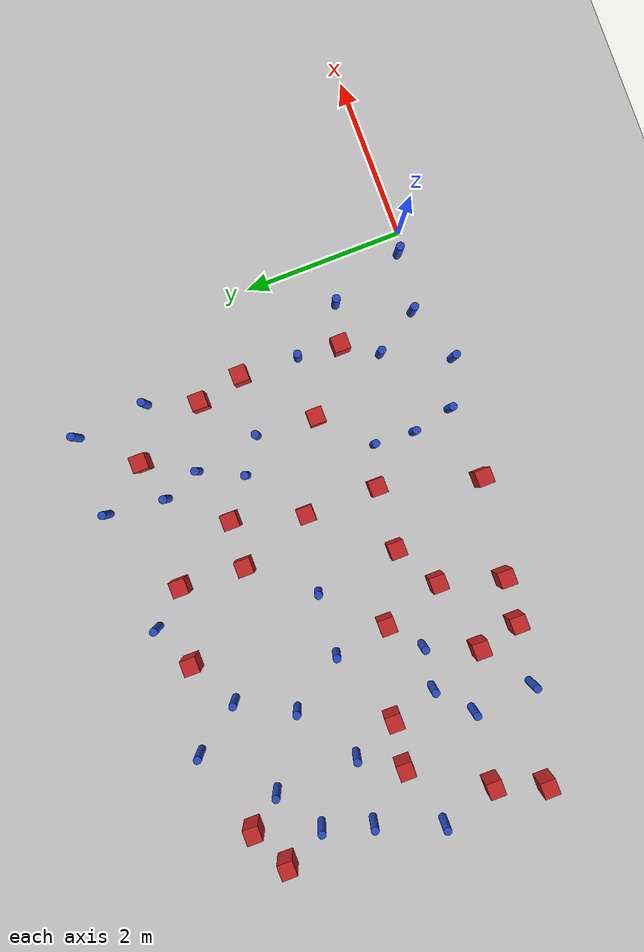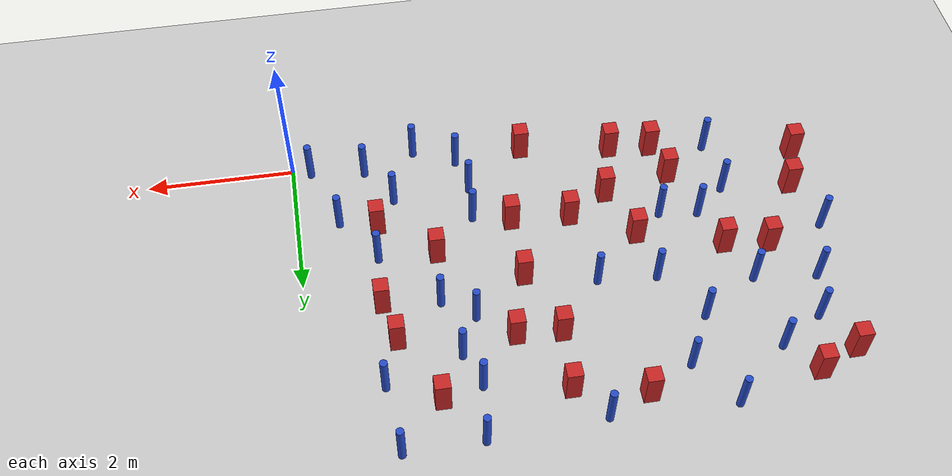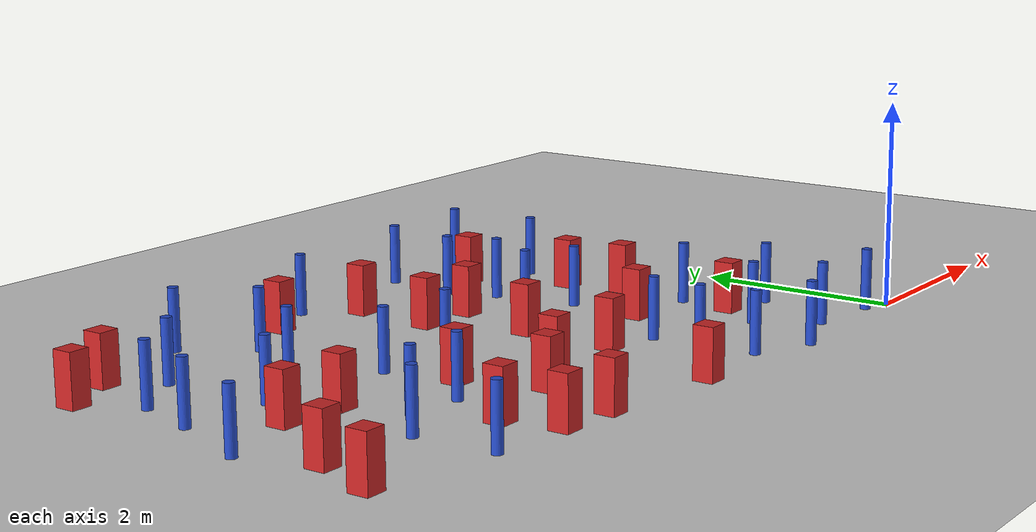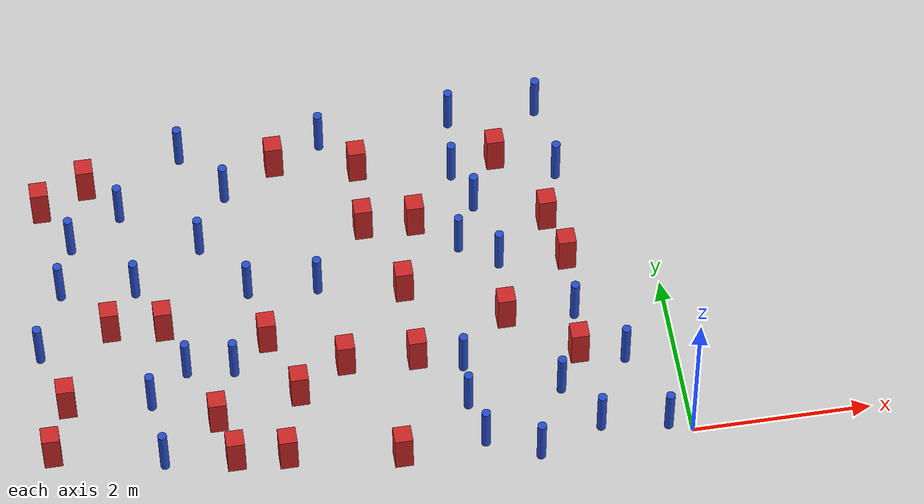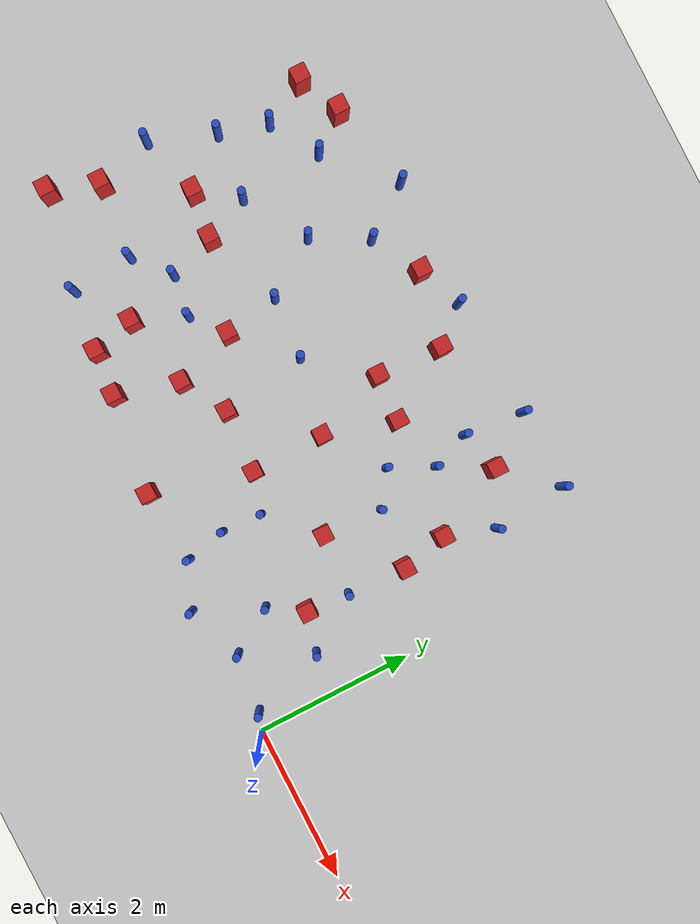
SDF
<sdf version="1.6">
 <world name="default">
  <model name="ground_plane">
   <static>1</static>
   <link name="link">
    <collision name="collision">
     <geometry><plane><normal>0 0 1</normal><size>100 100</size></plane></geometry>
     <surface><friction><ode><mu>100</mu><mu2>50</mu2></ode></friction></surface>
    </collision>
    <visual name="visual">
     <cast_shadows>0</cast_shadows>
     <geometry><plane><normal>0 0 1</normal><size>100 100</size></plane></geometry>
     <material>
      <ambient>1.0 1.0 1.0 1.0</ambient>
      <diffuse>0.8 0.8 0.8 1.0</diffuse>
      <specular>0.01 0.01 0.01 1.000000</specular>
     </material>
    </visual>
   </link>
  </model>
  <model name="pole_obstacle1">
   <static>true</static>
   <pose>-0.901617990239 3.67017002078 -3.09024884848e-07 -7.19054271902e-07 -2.11315075191e-07 -1.9393550928e-07</pose>
   <link name="link">
    <pose>0 0 0.3 0 -0 0</pose>
    <inertial>
     <mass>1</mass>
     <inertia><ixx>0.145833</ixx><ixy>0</ixy><ixz>0</ixz><iyy>0.145833</iyy><iyz>0</iyz><izz>0.125</izz></inertia>
    </inertial>
    <collision name="collision">
     <geometry><cylinder><radius>0.05</radius><length>.6</length></cylinder></geometry>
    </collision>
    <visual name="visual">
     <geometry><cylinder><radius>0.05</radius><length>.6</length></cylinder></geometry>
     <material>
      <script><name>Gazebo/Blue</name><uri>file://media/materials/scripts/gazebo.material</uri></script>
     </material>
    </visual>
   </link>
  </model>
  <model name="pole_obstacle2">
   <static>true</static>
   <pose>-3.81581999024 2.50415002078 -3.09024884793e-07 -7.19054271912e-07 -2.11315075128e-07 -1.93935509262e-07</pose>
   <link name="link">
    <pose>0 0 0.3 0 -0 0</pose>
    <inertial>
     <mass>1</mass>
     <inertia><ixx>0.145833</ixx><ixy>0</ixy><ixz>0</ixz><iyy>0.145833</iyy><iyz>0</iyz><izz>0.125</izz></inertia>
    </inertial>
    <collision name="collision">
     <geometry><cylinder><radius>0.05</radius><length>.6</length></cylinder></geometry>
    </collision>
    <visual name="visual">
     <geometry><cylinder><radius>0.05</radius><length>.6</length></cylinder></geometry>
     <material>
      <script><name>Gazebo/Blue</name><uri>file://media/materials/scripts/gazebo.material</uri></script>
     </material>
    </visual>
   </link>
  </model>
  <model name="square_post_obstacle7">
   <static>true</static>
   <pose>-2.8676599448 2.30549997467 -4.36207812815e-07 3.75137919937e-06 9.77721102514e-07 2.47381364184e-05</pose>
   <link name="link">
    <pose>0 0 0.25 0 -0 0</pose>
    <inertial>
     <mass>100</mass>
     <inertia>
      <ixx>0.166667</ixx>
      <ixy>0</ixy>
      <ixz>0</ixz>
      <iyy>0.166667</iyy>
      <iyz>0</iyz>
      <izz>0.166667</izz>
     </inertia>
    </inertial>
    <collision name="collision"><geometry><box><size>.2 .2 .5</size></box></geometry></collision>
    <visual name="visual">
     <geometry><box><size>.2 .2 .5</size></box></geometry>
     <material>
      <script><name>Gazebo/Red</name><uri>file://media/materials/scripts/gazebo.material</uri></script>
     </material>
    </visual>
   </link>
  </model>
  <model name="square_post_obstacle17">
   <static>true</static>
   <pose>-4.4447999448 0.308830974674 -4.36207812815e-07 3.75137919937e-06 9.77721102514e-07 2.47381364184e-05</pose>
   <link name="link">
    <pose>0 0 0.25 0 -0 0</pose>
    <inertial>
     <mass>100</mass>
     <inertia>
      <ixx>0.166667</ixx>
      <ixy>0</ixy>
      <ixz>0</ixz>
      <iyy>0.166667</iyy>
      <iyz>0</iyz>
      <izz>0.166667</izz>
     </inertia>
    </inertial>
    <collision name="collision"><geometry><box><size>.2 .2 .5</size></box></geometry></collision>
    <visual name="visual">
     <geometry><box><size>.2 .2 .5</size></box></geometry>
     <material>
      <script><name>Gazebo/Red</name><uri>file://media/materials/scripts/gazebo.material</uri></script>
     </material>
    </visual>
   </link>
  </model>
  <model name="pole_obstacle27">
   <static>true</static>
   <pose>-5.06459999024 3.25341002078 -3.09024884793e-07 -7.19054271912e-07 -2.11315075135e-07 -1.93935509265e-07</pose>
   <link name="link">
    <pose>0 0 0.3 0 -0 0</pose>
    <inertial>
     <mass>1</mass>
     <inertia><ixx>0.145833</ixx><ixy>0</ixy><ixz>0</ixz><iyy>0.145833</iyy><iyz>0</iyz><izz>0.125</izz></inertia>
    </inertial>
    <collision name="collision">
     <geometry><cylinder><radius>0.05</radius><length>.6</length></cylinder></geometry>
    </collision>
    <visual name="visual">
     <geometry><cylinder><radius>0.05</radius><length>.6</length></cylinder></geometry>
     <material>
      <script><name>Gazebo/Blue</name><uri>file://media/materials/scripts/gazebo.material</uri></script>
     </material>
    </visual>
   </link>
  </model>
  <model name="pole_obstacle39">
   <static>true</static>
   <pose>-4.60001999024 2.56454002078 -3.09024884793e-07 -7.19054271912e-07 -2.11315075144e-07 -1.93935509269e-07</pose>
   <link name="link">
    <pose>0 0 0.3 0 -0 0</pose>
    <inertial>
     <mass>1</mass>
     <inertia><ixx>0.145833</ixx><ixy>0</ixy><ixz>0</ixz><iyy>0.145833</iyy><iyz>0</iyz><izz>0.125</izz></inertia>
    </inertial>
    <collision name="collision">
     <geometry><cylinder><radius>0.05</radius><length>.6</length></cylinder></geometry>
    </collision>
    <visual name="visual">
     <geometry><cylinder><radius>0.05</radius><length>.6</length></cylinder></geometry>
     <material>
      <script><name>Gazebo/Blue</name><uri>file://media/materials/scripts/gazebo.material</uri></script>
     </material>
    </visual>
   </link>
  </model>
  <model name="square_post_obstacle32">
   <static>true</static>
   <pose>-3.2030099448 0.129323974674 -4.36207812815e-07 3.75137919937e-06 9.77721102514e-07 2.47381364184e-05</pose>
   <link name="link">
    <pose>0 0 0.25 0 -0 0</pose>
    <inertial>
     <mass>100</mass>
     <inertia>
      <ixx>0.166667</ixx>
      <ixy>0</ixy>
      <ixz>0</ixz>
      <iyy>0.166667</iyy>
      <iyz>0</iyz>
      <izz>0.166667</izz>
     </inertia>
    </inertial>
    <collision name="collision"><geometry><box><size>.2 .2 .5</size></box></geometry></collision>
    <visual name="visual">
     <geometry><box><size>.2 .2 .5</size></box></geometry>
     <material>
      <script><name>Gazebo/Red</name><uri>file://media/materials/scripts/gazebo.material</uri></script>
     </material>
    </visual>
   </link>
  </model>
  <model name="pole_obstacle48">
   <static>true</static>
   <pose>-5.78747999024 0.452747020783 -3.09024884793e-07 -7.19054271912e-07 -2.11315075125e-07 -1.93935509261e-07</pose>
   <link name="link">
    <pose>0 0 0.3 0 -0 0</pose>
    <inertial>
     <mass>1</mass>
     <inertia><ixx>0.145833</ixx><ixy>0</ixy><ixz>0</ixz><iyy>0.145833</iyy><iyz>0</iyz><izz>0.125</izz></inertia>
    </inertial>
    <collision name="collision">
     <geometry><cylinder><radius>0.05</radius><length>.6</length></cylinder></geometry>
    </collision>
    <visual name="visual">
     <geometry><cylinder><radius>0.05</radius><length>.6</length></cylinder></geometry>
     <material>
      <script><name>Gazebo/Blue</name><uri>file://media/materials/scripts/gazebo.material</uri></script>
     </material>
    </visual>
   </link>
  </model>
  <model name="square_post_obstacle39">
   <static>true</static>
   <pose>-2.8589399448 1.37437997467 -4.36207812815e-07 3.75137919937e-06 9.77721102514e-07 2.47381364184e-05</pose>
   <link name="link">
    <pose>0 0 0.25 0 -0 0</pose>
    <inertial>
     <mass>100</mass>
     <inertia>
      <ixx>0.166667</ixx>
      <ixy>0</ixy>
      <ixz>0</ixz>
      <iyy>0.166667</iyy>
      <iyz>0</iyz>
      <izz>0.166667</izz>
     </inertia>
    </inertial>
    <collision name="collision"><geometry><box><size>.2 .2 .5</size></box></geometry></collision>
    <visual name="visual">
     <geometry><box><size>.2 .2 .5</size></box></geometry>
     <material>
      <script><name>Gazebo/Red</name><uri>file://media/materials/scripts/gazebo.material</uri></script>
     </material>
    </visual>
   </link>
  </model>
  <model name="pole_obstacle51">
   <static>true</static>
   <pose>-5.40598999024 1.60795002078 -3.09024884793e-07 -7.19054271912e-07 -2.11315075123e-07 -1.93935509261e-07</pose>
   <link name="link">
    <pose>0 0 0.3 0 -0 0</pose>
    <inertial>
     <mass>1</mass>
     <inertia><ixx>0.145833</ixx><ixy>0</ixy><ixz>0</ixz><iyy>0.145833</iyy><iyz>0</iyz><izz>0.125</izz></inertia>
    </inertial>
    <collision name="collision">
     <geometry><cylinder><radius>0.05</radius><length>.6</length></cylinder></geometry>
    </collision>
    <visual name="visual">
     <geometry><cylinder><radius>0.05</radius><length>.6</length></cylinder></geometry>
     <material>
      <script><name>Gazebo/Blue</name><uri>file://media/materials/scripts/gazebo.material</uri></script>
     </material>
    </visual>
   </link>
  </model>
  <model name="pole_obstacle70">
   <static>true</static>
   <pose>-6.99186999024 2.05843002078 -3.09024884793e-07 -7.19054271912e-07 -2.11315075135e-07 -1.93935509265e-07</pose>
   <link name="link">
    <pose>0 0 0.3 0 -0 0</pose>
    <inertial>
     <mass>1</mass>
     <inertia><ixx>0.145833</ixx><ixy>0</ixy><ixz>0</ixz><iyy>0.145833</iyy><iyz>0</iyz><izz>0.125</izz></inertia>
    </inertial>
    <collision name="collision">
     <geometry><cylinder><radius>0.05</radius><length>.6</length></cylinder></geometry>
    </collision>
    <visual name="visual">
     <geometry><cylinder><radius>0.05</radius><length>.6</length></cylinder></geometry>
     <material>
      <script><name>Gazebo/Blue</name><uri>file://media/materials/scripts/gazebo.material</uri></script>
     </material>
    </visual>
   </link>
  </model>
  <model name="pole_obstacle71">
   <static>true</static>
   <pose>-2.27416999024 0.195112020783 -3.09024884793e-07 -7.19054271913e-07 -2.11315075118e-07 -1.93935509258e-07</pose>
   <link name="link">
    <pose>0 0 0.3 0 -0 0</pose>
    <inertial>
     <mass>1</mass>
     <inertia><ixx>0.145833</ixx><ixy>0</ixy><ixz>0</ixz><iyy>0.145833</iyy><iyz>0</iyz><izz>0.125</izz></inertia>
    </inertial>
    <collision name="collision">
     <geometry><cylinder><radius>0.05</radius><length>.6</length></cylinder></geometry>
    </collision>
    <visual name="visual">
     <geometry><cylinder><radius>0.05</radius><length>.6</length></cylinder></geometry>
     <material>
      <script><name>Gazebo/Blue</name><uri>file://media/materials/scripts/gazebo.material</uri></script>
     </material>
    </visual>
   </link>
  </model>
  <model name="pole_obstacle75">
   <static>true</static>
   <pose>-0.989028990239 4.60326002078 -3.09024884793e-07 -7.19054271911e-07 -2.11315075144e-07 -1.9393550927e-07</pose>
   <link name="link">
    <pose>0 0 0.3 0 -0 0</pose>
    <inertial>
     <mass>1</mass>
     <inertia><ixx>0.145833</ixx><ixy>0</ixy><ixz>0</ixz><iyy>0.145833</iyy><iyz>0</iyz><izz>0.125</izz></inertia>
    </inertial>
    <collision name="collision">
     <geometry><cylinder><radius>0.05</radius><length>.6</length></cylinder></geometry>
    </collision>
    <visual name="visual">
     <geometry><cylinder><radius>0.05</radius><length>.6</length></cylinder></geometry>
     <material>
      <script><name>Gazebo/Blue</name><uri>file://media/materials/scripts/gazebo.material</uri></script>
     </material>
    </visual>
   </link>
  </model>
  <model name="pole_obstacle78">
   <static>true</static>
   <pose>-1.33695999024 0.751950020783 -3.09024884793e-07 -7.19054271912e-07 -2.11315075127e-07 -1.93935509261e-07</pose>
   <link name="link">
    <pose>0 0 0.3 0 -0 0</pose>
    <inertial>
     <mass>1</mass>
     <inertia><ixx>0.145833</ixx><ixy>0</ixy><ixz>0</ixz><iyy>0.145833</iyy><iyz>0</iyz><izz>0.125</izz></inertia>
    </inertial>
    <collision name="collision">
     <geometry><cylinder><radius>0.05</radius><length>.6</length></cylinder></geometry>
    </collision>
    <visual name="visual">
     <geometry><cylinder><radius>0.05</radius><length>.6</length></cylinder></geometry>
     <material>
      <script><name>Gazebo/Blue</name><uri>file://media/materials/scripts/gazebo.material</uri></script>
     </material>
    </visual>
   </link>
  </model>
  <model name="pole_obstacle79">
   <static>true</static>
   <pose>-2.36067999024 1.21716002078 -3.09024884793e-07 -7.19054271911e-07 -2.11315075168e-07 -1.93935509283e-07</pose>
   <link name="link">
    <pose>0 0 0.3 0 -0 0</pose>
    <inertial>
     <mass>1</mass>
     <inertia><ixx>0.145833</ixx><ixy>0</ixy><ixz>0</ixz><iyy>0.145833</iyy><iyz>0</iyz><izz>0.125</izz></inertia>
    </inertial>
    <collision name="collision">
     <geometry><cylinder><radius>0.05</radius><length>.6</length></cylinder></geometry>
    </collision>
    <visual name="visual">
     <geometry><cylinder><radius>0.05</radius><length>.6</length></cylinder></geometry>
     <material>
      <script><name>Gazebo/Blue</name><uri>file://media/materials/scripts/gazebo.material</uri></script>
     </material>
    </visual>
   </link>
  </model>
  <model name="square_post_obstacle67">
   <static>true</static>
   <pose>-6.7870099448 4.03285997467 -4.36207812815e-07 3.75137919937e-06 9.77721102514e-07 2.47381364184e-05</pose>
   <link name="link">
    <pose>0 0 0.25 0 -0 0</pose>
    <inertial>
     <mass>100</mass>
     <inertia>
      <ixx>0.166667</ixx>
      <ixy>0</ixy>
      <ixz>0</ixz>
      <iyy>0.166667</iyy>
      <iyz>0</iyz>
      <izz>0.166667</izz>
     </inertia>
    </inertial>
    <collision name="collision"><geometry><box><size>.2 .2 .5</size></box></geometry></collision>
    <visual name="visual">
     <geometry><box><size>.2 .2 .5</size></box></geometry>
     <material>
      <script><name>Gazebo/Red</name><uri>file://media/materials/scripts/gazebo.material</uri></script>
     </material>
    </visual>
   </link>
  </model>
  <model name="square_post_obstacle69">
   <static>true</static>
   <pose>-5.1441699448 0.900576974674 -4.36207812815e-07 3.75137919937e-06 9.77721102514e-07 2.47381364184e-05</pose>
   <link name="link">
    <pose>0 0 0.25 0 -0 0</pose>
    <inertial>
     <mass>100</mass>
     <inertia>
      <ixx>0.166667</ixx>
      <ixy>0</ixy>
      <ixz>0</ixz>
      <iyy>0.166667</iyy>
      <iyz>0</iyz>
      <izz>0.166667</izz>
     </inertia>
    </inertial>
    <collision name="collision"><geometry><box><size>.2 .2 .5</size></box></geometry></collision>
    <visual name="visual">
     <geometry><box><size>.2 .2 .5</size></box></geometry>
     <material>
      <script><name>Gazebo/Red</name><uri>file://media/materials/scripts/gazebo.material</uri></script>
     </material>
    </visual>
   </link>
  </model>
  <model name="pole_obstacle82">
   <static>true</static>
   <pose>-0.988530990239 0.198704020783 -3.09024884793e-07 -7.19054271912e-07 -2.11315075131e-07 -1.93935509263e-07</pose>
   <link name="link">
    <pose>0 0 0.3 0 -0 0</pose>
    <inertial>
     <mass>1</mass>
     <inertia><ixx>0.145833</ixx><ixy>0</ixy><ixz>0</ixz><iyy>0.145833</iyy><iyz>0</iyz><izz>0.125</izz></inertia>
    </inertial>
    <collision name="collision">
     <geometry><cylinder><radius>0.05</radius><length>.6</length></cylinder></geometry>
    </collision>
    <visual name="visual">
     <geometry><cylinder><radius>0.05</radius><length>.6</length></cylinder></geometry>
     <material>
      <script><name>Gazebo/Blue</name><uri>file://media/materials/scripts/gazebo.material</uri></script>
     </material>
    </visual>
   </link>
  </model>
  <model name="pole_obstacle84">
   <static>true</static>
   <pose>-5.14254999024 4.55343002078 -3.09024884793e-07 -7.19054271911e-07 -2.1131507516e-07 -1.93935509277e-07</pose>
   <link name="link">
    <pose>0 0 0.3 0 -0 0</pose>
    <inertial>
     <mass>1</mass>
     <inertia><ixx>0.145833</ixx><ixy>0</ixy><ixz>0</ixz><iyy>0.145833</iyy><iyz>0</iyz><izz>0.125</izz></inertia>
    </inertial>
    <collision name="collision">
     <geometry><cylinder><radius>0.05</radius><length>.6</length></cylinder></geometry>
    </collision>
    <visual name="visual">
     <geometry><cylinder><radius>0.05</radius><length>.6</length></cylinder></geometry>
     <material>
      <script><name>Gazebo/Blue</name><uri>file://media/materials/scripts/gazebo.material</uri></script>
     </material>
    </visual>
   </link>
  </model>
  <model name="square_post_obstacle78">
   <static>true</static>
   <pose>-0.992780944804 2.45842997467 -4.36207812815e-07 3.75137919937e-06 9.77721102514e-07 2.47381364184e-05</pose>
   <link name="link">
    <pose>0 0 0.25 0 -0 0</pose>
    <inertial>
     <mass>100</mass>
     <inertia>
      <ixx>0.166667</ixx>
      <ixy>0</ixy>
      <ixz>0</ixz>
      <iyy>0.166667</iyy>
      <iyz>0</iyz>
      <izz>0.166667</izz>
     </inertia>
    </inertial>
    <collision name="collision"><geometry><box><size>.2 .2 .5</size></box></geometry></collision>
    <visual name="visual">
     <geometry><box><size>.2 .2 .5</size></box></geometry>
     <material>
      <script><name>Gazebo/Red</name><uri>file://media/materials/scripts/gazebo.material</uri></script>
     </material>
    </visual>
   </link>
  </model>
  <model name="pole_obstacle90">
   <static>true</static>
   <pose>-1.74453999024 2.53128002078 -3.09024884848e-07 -7.19054271902e-07 -2.11315075192e-07 -1.93935509282e-07</pose>
   <link name="link">
    <pose>0 0 0.3 0 -0 0</pose>
    <inertial>
     <mass>1</mass>
     <inertia><ixx>0.145833</ixx><ixy>0</ixy><ixz>0</ixz><iyy>0.145833</iyy><iyz>0</iyz><izz>0.125</izz></inertia>
    </inertial>
    <collision name="collision">
     <geometry><cylinder><radius>0.05</radius><length>.6</length></cylinder></geometry>
    </collision>
    <visual name="visual">
     <geometry><cylinder><radius>0.05</radius><length>.6</length></cylinder></geometry>
     <material>
      <script><name>Gazebo/Blue</name><uri>file://media/materials/scripts/gazebo.material</uri></script>
     </material>
    </visual>
   </link>
  </model>
  <model name="square_post_obstacle83">
   <static>true</static>
   <pose>-4.0828099448 4.26227997467 -4.36207812815e-07 3.75137919937e-06 9.77721102514e-07 2.47381364184e-05</pose>
   <link name="link">
    <pose>0 0 0.25 0 -0 0</pose>
    <inertial>
     <mass>100</mass>
     <inertia>
      <ixx>0.166667</ixx>
      <ixy>0</ixy>
      <ixz>0</ixz>
      <iyy>0.166667</iyy>
      <iyz>0</iyz>
      <izz>0.166667</izz>
     </inertia>
    </inertial>
    <collision name="collision"><geometry><box><size>.2 .2 .5</size></box></geometry></collision>
    <visual name="visual">
     <geometry><box><size>.2 .2 .5</size></box></geometry>
     <material>
      <script><name>Gazebo/Red</name><uri>file://media/materials/scripts/gazebo.material</uri></script>
     </material>
    </visual>
   </link>
  </model>
  <model name="pole_obstacle94">
   <static>true</static>
   <pose>-2.08466999024 3.83935002078 -3.09024884848e-07 -7.19054271903e-07 -2.11315075185e-07 -1.93935509279e-07</pose>
   <link name="link">
    <pose>0 0 0.3 0 -0 0</pose>
    <inertial>
     <mass>1</mass>
     <inertia><ixx>0.145833</ixx><ixy>0</ixy><ixz>0</ixz><iyy>0.145833</iyy><iyz>0</iyz><izz>0.125</izz></inertia>
    </inertial>
    <collision name="collision">
     <geometry><cylinder><radius>0.05</radius><length>.6</length></cylinder></geometry>
    </collision>
    <visual name="visual">
     <geometry><cylinder><radius>0.05</radius><length>.6</length></cylinder></geometry>
     <material>
      <script><name>Gazebo/Blue</name><uri>file://media/materials/scripts/gazebo.material</uri></script>
     </material>
    </visual>
   </link>
  </model>
  <model name="pole_obstacle98">
   <static>true</static>
   <pose>-2.38574999024 0.707127020783 -3.09024884793e-07 -7.19054271912e-07 -2.11315075126e-07 -1.93935509262e-07</pose>
   <link name="link">
    <pose>0 0 0.3 0 -0 0</pose>
    <inertial>
     <mass>1</mass>
     <inertia><ixx>0.145833</ixx><ixy>0</ixy><ixz>0</ixz><iyy>0.145833</iyy><iyz>0</iyz><izz>0.125</izz></inertia>
    </inertial>
    <collision name="collision">
     <geometry><cylinder><radius>0.05</radius><length>.6</length></cylinder></geometry>
    </collision>
    <visual name="visual">
     <geometry><cylinder><radius>0.05</radius><length>.6</length></cylinder></geometry>
     <material>
      <script><name>Gazebo/Blue</name><uri>file://media/materials/scripts/gazebo.material</uri></script>
     </material>
    </visual>
   </link>
  </model>
  <model name="pole_obstacle99">
   <static>true</static>
   <pose>-3.52632999024 4.50293002078 -3.09024884848e-07 -7.19054271903e-07 -2.11315075193e-07 -1.93935509285e-07</pose>
   <link name="link">
    <pose>0 0 0.3 0 -0 0</pose>
    <inertial>
     <mass>1</mass>
     <inertia><ixx>0.145833</ixx><ixy>0</ixy><ixz>0</ixz><iyy>0.145833</iyy><iyz>0</iyz><izz>0.125</izz></inertia>
    </inertial>
    <collision name="collision">
     <geometry><cylinder><radius>0.05</radius><length>.6</length></cylinder></geometry>
    </collision>
    <visual name="visual">
     <geometry><cylinder><radius>0.05</radius><length>.6</length></cylinder></geometry>
     <material>
      <script><name>Gazebo/Blue</name><uri>file://media/materials/scripts/gazebo.material</uri></script>
     </material>
    </visual>
   </link>
  </model>
  <model name="square_post_obstacle91">
   <static>true</static>
   <pose>-5.0136799448 0.366532974674 -4.36207812815e-07 3.75137919937e-06 9.77721102514e-07 2.47381364184e-05</pose>
   <link name="link">
    <pose>0 0 0.25 0 -0 0</pose>
    <inertial>
     <mass>100</mass>
     <inertia>
      <ixx>0.166667</ixx>
      <ixy>0</ixy>
      <ixz>0</ixz>
      <iyy>0.166667</iyy>
      <iyz>0</iyz>
      <izz>0.166667</izz>
     </inertia>
    </inertial>
    <collision name="collision"><geometry><box><size>.2 .2 .5</size></box></geometry></collision>
    <visual name="visual">
     <geometry><box><size>.2 .2 .5</size></box></geometry>
     <material>
      <script><name>Gazebo/Red</name><uri>file://media/materials/scripts/gazebo.material</uri></script>
     </material>
    </visual>
   </link>
  </model>
  <model name="pole_obstacle100">
   <static>true</static>
   <pose>-5.83986999024 1.23845002078 -3.09024884793e-07 -7.19054271912e-07 -2.11315075123e-07 -1.93935509261e-07</pose>
   <link name="link">
    <pose>0 0 0.3 0 -0 0</pose>
    <inertial>
     <mass>1</mass>
     <inertia><ixx>0.145833</ixx><ixy>0</ixy><ixz>0</ixz><iyy>0.145833</iyy><iyz>0</iyz><izz>0.125</izz></inertia>
    </inertial>
    <collision name="collision">
     <geometry><cylinder><radius>0.05</radius><length>.6</length></cylinder></geometry>
    </collision>
    <visual name="visual">
     <geometry><cylinder><radius>0.05</radius><length>.6</length></cylinder></geometry>
     <material>
      <script><name>Gazebo/Blue</name><uri>file://media/materials/scripts/gazebo.material</uri></script>
     </material>
    </visual>
   </link>
  </model>
  <model name="square_post_obstacle92">
   <static>true</static>
   <pose>-3.6526499448 1.42463997467 -4.36207812815e-07 3.75137919937e-06 9.77721102514e-07 2.47381364184e-05</pose>
   <link name="link">
    <pose>0 0 0.25 0 -0 0</pose>
    <inertial>
     <mass>100</mass>
     <inertia>
      <ixx>0.166667</ixx>
      <ixy>0</ixy>
      <ixz>0</ixz>
      <iyy>0.166667</iyy>
      <iyz>0</iyz>
      <izz>0.166667</izz>
     </inertia>
    </inertial>
    <collision name="collision"><geometry><box><size>.2 .2 .5</size></box></geometry></collision>
    <visual name="visual">
     <geometry><box><size>.2 .2 .5</size></box></geometry>
     <material>
      <script><name>Gazebo/Red</name><uri>file://media/materials/scripts/gazebo.material</uri></script>
     </material>
    </visual>
   </link>
  </model>
  <model name="square_post_obstacle93">
   <static>true</static>
   <pose>-2.6101599448 3.19319997467 -4.36207812815e-07 3.75137919937e-06 9.77721102514e-07 2.47381364184e-05</pose>
   <link name="link">
    <pose>0 0 0.25 0 -0 0</pose>
    <inertial>
     <mass>100</mass>
     <inertia>
      <ixx>0.166667</ixx>
      <ixy>0</ixy>
      <ixz>0</ixz>
      <iyy>0.166667</iyy>
      <iyz>0</iyz>
      <izz>0.166667</izz>
     </inertia>
    </inertial>
    <collision name="collision"><geometry><box><size>.2 .2 .5</size></box></geometry></collision>
    <visual name="visual">
     <geometry><box><size>.2 .2 .5</size></box></geometry>
     <material>
      <script><name>Gazebo/Red</name><uri>file://media/materials/scripts/gazebo.material</uri></script>
     </material>
    </visual>
   </link>
  </model>
  <model name="square_post_obstacle95">
   <static>true</static>
   <pose>-4.2125899448 1.10047997467 -4.36207812815e-07 3.75137919937e-06 9.77721102514e-07 2.47381364184e-05</pose>
   <link name="link">
    <pose>0 0 0.25 0 -0 0</pose>
    <inertial>
     <mass>100</mass>
     <inertia>
      <ixx>0.166667</ixx>
      <ixy>0</ixy>
      <ixz>0</ixz>
      <iyy>0.166667</iyy>
      <iyz>0</iyz>
      <izz>0.166667</izz>
     </inertia>
    </inertial>
    <collision name="collision"><geometry><box><size>.2 .2 .5</size></box></geometry></collision>
    <visual name="visual">
     <geometry><box><size>.2 .2 .5</size></box></geometry>
     <material>
      <script><name>Gazebo/Red</name><uri>file://media/materials/scripts/gazebo.material</uri></script>
     </material>
    </visual>
   </link>
  </model>
  <model name="pole_obstacle102">
   <static>true</static>
   <pose>-1.70213999024 -0.0650419792175 -3.09024884793e-07 -7.19054271912e-07 -2.11315075129e-07 -1.93935509262e-07</pose>
   <link name="link">
    <pose>0 0 0.3 0 -0 0</pose>
    <inertial>
     <mass>1</mass>
     <inertia><ixx>0.145833</ixx><ixy>0</ixy><ixz>0</ixz><iyy>0.145833</iyy><iyz>0</iyz><izz>0.125</izz></inertia>
    </inertial>
    <collision name="collision">
     <geometry><cylinder><radius>0.05</radius><length>.6</length></cylinder></geometry>
    </collision>
    <visual name="visual">
     <geometry><cylinder><radius>0.05</radius><length>.6</length></cylinder></geometry>
     <material>
      <script><name>Gazebo/Blue</name><uri>file://media/materials/scripts/gazebo.material</uri></script>
     </material>
    </visual>
   </link>
  </model>
  <model name="pole_obstacle109">
   <static>true</static>
   <pose>-1.02227999024 1.71552002078 -3.09024884793e-07 -7.19054271912e-07 -2.11315075126e-07 -1.9393550926e-07</pose>
   <link name="link">
    <pose>0 0 0.3 0 -0 0</pose>
    <inertial>
     <mass>1</mass>
     <inertia><ixx>0.145833</ixx><ixy>0</ixy><ixz>0</ixz><iyy>0.145833</iyy><iyz>0</iyz><izz>0.125</izz></inertia>
    </inertial>
    <collision name="collision">
     <geometry><cylinder><radius>0.05</radius><length>.6</length></cylinder></geometry>
    </collision>
    <visual name="visual">
     <geometry><cylinder><radius>0.05</radius><length>.6</length></cylinder></geometry>
     <material>
      <script><name>Gazebo/Blue</name><uri>file://media/materials/scripts/gazebo.material</uri></script>
     </material>
    </visual>
   </link>
  </model>
  <model name="square_post_obstacle104">
   <static>true</static>
   <pose>-1.1194599448 3.03871997467 -4.36207812815e-07 3.75137919937e-06 9.77721102514e-07 2.47381364184e-05</pose>
   <link name="link">
    <pose>0 0 0.25 0 -0 0</pose>
    <inertial>
     <mass>100</mass>
     <inertia>
      <ixx>0.166667</ixx>
      <ixy>0</ixy>
      <ixz>0</ixz>
      <iyy>0.166667</iyy>
      <iyz>0</iyz>
      <izz>0.166667</izz>
     </inertia>
    </inertial>
    <collision name="collision"><geometry><box><size>.2 .2 .5</size></box></geometry></collision>
    <visual name="visual">
     <geometry><box><size>.2 .2 .5</size></box></geometry>
     <material>
      <script><name>Gazebo/Red</name><uri>file://media/materials/scripts/gazebo.material</uri></script>
     </material>
    </visual>
   </link>
  </model>
  <model name="square_post_obstacle109">
   <static>true</static>
   <pose>-6.9900599448 0.727356974674 -4.36207812815e-07 3.75137919937e-06 9.77721102514e-07 2.47381364184e-05</pose>
   <link name="link">
    <pose>0 0 0.25 0 -0 0</pose>
    <inertial>
     <mass>100</mass>
     <inertia>
      <ixx>0.166667</ixx>
      <ixy>0</ixy>
      <ixz>0</ixz>
      <iyy>0.166667</iyy>
      <iyz>0</iyz>
      <izz>0.166667</izz>
     </inertia>
    </inertial>
    <collision name="collision"><geometry><box><size>.2 .2 .5</size></box></geometry></collision>
    <visual name="visual">
     <geometry><box><size>.2 .2 .5</size></box></geometry>
     <material>
      <script><name>Gazebo/Red</name><uri>file://media/materials/scripts/gazebo.material</uri></script>
     </material>
    </visual>
   </link>
  </model>
  <model name="square_post_obstacle111">
   <static>true</static>
   <pose>-1.7947699448 1.77155997467 -4.36207812815e-07 3.75137919937e-06 9.77721102514e-07 2.47381364184e-05</pose>
   <link name="link">
    <pose>0 0 0.25 0 -0 0</pose>
    <inertial>
     <mass>100</mass>
     <inertia>
      <ixx>0.166667</ixx>
      <ixy>0</ixy>
      <ixz>0</ixz>
      <iyy>0.166667</iyy>
      <iyz>0</iyz>
      <izz>0.166667</izz>
     </inertia>
    </inertial>
    <collision name="collision"><geometry><box><size>.2 .2 .5</size></box></geometry></collision>
    <visual name="visual">
     <geometry><box><size>.2 .2 .5</size></box></geometry>
     <material>
      <script><name>Gazebo/Red</name><uri>file://media/materials/scripts/gazebo.material</uri></script>
     </material>
    </visual>
   </link>
  </model>
  <model name="square_post_obstacle118">
   <static>true</static>
   <pose>-6.1825299448 2.27334997467 -4.36207812815e-07 3.75137919937e-06 9.77721102514e-07 2.47381364184e-05</pose>
   <link name="link">
    <pose>0 0 0.25 0 -0 0</pose>
    <inertial>
     <mass>100</mass>
     <inertia>
      <ixx>0.166667</ixx>
      <ixy>0</ixy>
      <ixz>0</ixz>
      <iyy>0.166667</iyy>
      <iyz>0</iyz>
      <izz>0.166667</izz>
     </inertia>
    </inertial>
    <collision name="collision"><geometry><box><size>.2 .2 .5</size></box></geometry></collision>
    <visual name="visual">
     <geometry><box><size>.2 .2 .5</size></box></geometry>
     <material>
      <script><name>Gazebo/Red</name><uri>file://media/materials/scripts/gazebo.material</uri></script>
     </material>
    </visual>
   </link>
  </model>
  <model name="pole_obstacle122">
   <static>true</static>
   <pose>-6.50066999024 3.47763002078 -3.09024884793e-07 -7.19054271912e-07 -2.11315075135e-07 -1.93935509265e-07</pose>
   <link name="link">
    <pose>0 0 0.3 0 -0 0</pose>
    <inertial>
     <mass>1</mass>
     <inertia><ixx>0.145833</ixx><ixy>0</ixy><ixz>0</ixz><iyy>0.145833</iyy><iyz>0</iyz><izz>0.125</izz></inertia>
    </inertial>
    <collision name="collision">
     <geometry><cylinder><radius>0.05</radius><length>.6</length></cylinder></geometry>
    </collision>
    <visual name="visual">
     <geometry><cylinder><radius>0.05</radius><length>.6</length></cylinder></geometry>
     <material>
      <script><name>Gazebo/Blue</name><uri>file://media/materials/scripts/gazebo.material</uri></script>
     </material>
    </visual>
   </link>
  </model>
  <model name="pole_obstacle139">
   <static>true</static>
   <pose>-6.68114999024 2.86607002078 -3.09024884793e-07 -7.19054271912e-07 -2.11315075135e-07 -1.93935509265e-07</pose>
   <link name="link">
    <pose>0 0 0.3 0 -0 0</pose>
    <inertial>
     <mass>1</mass>
     <inertia><ixx>0.145833</ixx><ixy>0</ixy><ixz>0</ixz><iyy>0.145833</iyy><iyz>0</iyz><izz>0.125</izz></inertia>
    </inertial>
    <collision name="collision">
     <geometry><cylinder><radius>0.05</radius><length>.6</length></cylinder></geometry>
    </collision>
    <visual name="visual">
     <geometry><cylinder><radius>0.05</radius><length>.6</length></cylinder></geometry>
     <material>
      <script><name>Gazebo/Blue</name><uri>file://media/materials/scripts/gazebo.material</uri></script>
     </material>
    </visual>
   </link>
  </model>
  <model name="square_post_obstacle139">
   <static>true</static>
   <pose>-1.5633799448 3.97068997467 -4.36207812815e-07 3.75137919937e-06 9.77721102514e-07 2.47381364184e-05</pose>
   <link name="link">
    <pose>0 0 0.25 0 -0 0</pose>
    <inertial>
     <mass>100</mass>
     <inertia>
      <ixx>0.166667</ixx>
      <ixy>0</ixy>
      <ixz>0</ixz>
      <iyy>0.166667</iyy>
      <iyz>0</iyz>
      <izz>0.166667</izz>
     </inertia>
    </inertial>
    <collision name="collision"><geometry><box><size>.2 .2 .5</size></box></geometry></collision>
    <visual name="visual">
     <geometry><box><size>.2 .2 .5</size></box></geometry>
     <material>
      <script><name>Gazebo/Red</name><uri>file://media/materials/scripts/gazebo.material</uri></script>
     </material>
    </visual>
   </link>
  </model>
  <model name="pole_obstacle157">
   <static>true</static>
   <pose>-4.88298999024 1.53916002078 -3.09024884793e-07 -7.19054271912e-07 -2.11315075123e-07 -1.93935509261e-07</pose>
   <link name="link">
    <pose>0 0 0.3 0 -0 0</pose>
    <inertial>
     <mass>1</mass>
     <inertia><ixx>0.145833</ixx><ixy>0</ixy><ixz>0</ixz><iyy>0.145833</iyy><iyz>0</iyz><izz>0.125</izz></inertia>
    </inertial>
    <collision name="collision">
     <geometry><cylinder><radius>0.05</radius><length>.6</length></cylinder></geometry>
    </collision>
    <visual name="visual">
     <geometry><cylinder><radius>0.05</radius><length>.6</length></cylinder></geometry>
     <material>
      <script><name>Gazebo/Blue</name><uri>file://media/materials/scripts/gazebo.material</uri></script>
     </material>
    </visual>
   </link>
  </model>
  <model name="square_post_obstacle153">
   <static>true</static>
   <pose>-4.4754599448 1.86320997467 -4.36207812815e-07 3.75137919937e-06 9.77721102514e-07 2.47381364184e-05</pose>
   <link name="link">
    <pose>0 0 0.25 0 -0 0</pose>
    <inertial>
     <mass>100</mass>
     <inertia>
      <ixx>0.166667</ixx>
      <ixy>0</ixy>
      <ixz>0</ixz>
      <iyy>0.166667</iyy>
      <iyz>0</iyz>
      <izz>0.166667</izz>
     </inertia>
    </inertial>
    <collision name="collision"><geometry><box><size>.2 .2 .5</size></box></geometry></collision>
    <visual name="visual">
     <geometry><box><size>.2 .2 .5</size></box></geometry>
     <material>
      <script><name>Gazebo/Red</name><uri>file://media/materials/scripts/gazebo.material</uri></script>
     </material>
    </visual>
   </link>
  </model>
  <model name="pole_obstacle164">
   <static>true</static>
   <pose>-0.565907990239 1.04345002078 -3.09024884793e-07 -7.19054271912e-07 -2.11315075142e-07 -1.93935509269e-07</pose>
   <link name="link">
    <pose>0 0 0.3 0 -0 0</pose>
    <inertial>
     <mass>1</mass>
     <inertia><ixx>0.145833</ixx><ixy>0</ixy><ixz>0</ixz><iyy>0.145833</iyy><iyz>0</iyz><izz>0.125</izz></inertia>
    </inertial>
    <collision name="collision">
     <geometry><cylinder><radius>0.05</radius><length>.6</length></cylinder></geometry>
    </collision>
    <visual name="visual">
     <geometry><cylinder><radius>0.05</radius><length>.6</length></cylinder></geometry>
     <material>
      <script><name>Gazebo/Blue</name><uri>file://media/materials/scripts/gazebo.material</uri></script>
     </material>
    </visual>
   </link>
  </model>
  <model name="pole_obstacle165">
   <static>true</static>
   <pose>-2.16026999024 2.82313002078 -3.09024884793e-07 -7.19054271912e-07 -2.11315075128e-07 -1.93935509262e-07</pose>
   <link name="link">
    <pose>0 0 0.3 0 -0 0</pose>
    <inertial>
     <mass>1</mass>
     <inertia><ixx>0.145833</ixx><ixy>0</ixy><ixz>0</ixz><iyy>0.145833</iyy><iyz>0</iyz><izz>0.125</izz></inertia>
    </inertial>
    <collision name="collision">
     <geometry><cylinder><radius>0.05</radius><length>.6</length></cylinder></geometry>
    </collision>
    <visual name="visual">
     <geometry><cylinder><radius>0.05</radius><length>.6</length></cylinder></geometry>
     <material>
      <script><name>Gazebo/Blue</name><uri>file://media/materials/scripts/gazebo.material</uri></script>
     </material>
    </visual>
   </link>
  </model>
  <model name="square_post_obstacle162">
   <static>true</static>
   <pose>-1.0696999448 1.17902997467 -4.36207812815e-07 3.75137919937e-06 9.77721102514e-07 2.47381364184e-05</pose>
   <link name="link">
    <pose>0 0 0.25 0 -0 0</pose>
    <inertial>
     <mass>100</mass>
     <inertia>
      <ixx>0.166667</ixx>
      <ixy>0</ixy>
      <ixz>0</ixz>
      <iyy>0.166667</iyy>
      <iyz>0</iyz>
      <izz>0.166667</izz>
     </inertia>
    </inertial>
    <collision name="collision"><geometry><box><size>.2 .2 .5</size></box></geometry></collision>
    <visual name="visual">
     <geometry><box><size>.2 .2 .5</size></box></geometry>
     <material>
      <script><name>Gazebo/Red</name><uri>file://media/materials/scripts/gazebo.material</uri></script>
     </material>
    </visual>
   </link>
  </model>
  <model name="pole_obstacle167">
   <static>true</static>
   <pose>-4.69538999024 3.93342002078 -3.09024884793e-07 -7.19054271912e-07 -2.11315075144e-07 -1.93935509269e-07</pose>
   <link name="link">
    <pose>0 0 0.3 0 -0 0</pose>
    <inertial>
     <mass>1</mass>
     <inertia><ixx>0.145833</ixx><ixy>0</ixy><ixz>0</ixz><iyy>0.145833</iyy><iyz>0</iyz><izz>0.125</izz></inertia>
    </inertial>
    <collision name="collision">
     <geometry><cylinder><radius>0.05</radius><length>.6</length></cylinder></geometry>
    </collision>
    <visual name="visual">
     <geometry><cylinder><radius>0.05</radius><length>.6</length></cylinder></geometry>
     <material>
      <script><name>Gazebo/Blue</name><uri>file://media/materials/scripts/gazebo.material</uri></script>
     </material>
    </visual>
   </link>
  </model>
  <model name="pole_obstacle169">
   <static>true</static>
   <pose>-5.91061999024 3.84123002078 -3.09024884793e-07 -7.19054271912e-07 -2.11315075135e-07 -1.93935509265e-07</pose>
   <link name="link">
    <pose>0 0 0.3 0 -0 0</pose>
    <inertial>
     <mass>1</mass>
     <inertia><ixx>0.145833</ixx><ixy>0</ixy><ixz>0</ixz><iyy>0.145833</iyy><iyz>0</iyz><izz>0.125</izz></inertia>
    </inertial>
    <collision name="collision">
     <geometry><cylinder><radius>0.05</radius><length>.6</length></cylinder></geometry>
    </collision>
    <visual name="visual">
     <geometry><cylinder><radius>0.05</radius><length>.6</length></cylinder></geometry>
     <material>
      <script><name>Gazebo/Blue</name><uri>file://media/materials/scripts/gazebo.material</uri></script>
     </material>
    </visual>
   </link>
  </model>
  <model name="pole_obstacle173">
   <static>true</static>
   <pose>-5.84633999024 2.77375002078 -3.09024884793e-07 -7.19054271912e-07 -2.11315075135e-07 -1.93935509265e-07</pose>
   <link name="link">
    <pose>0 0 0.3 0 -0 0</pose>
    <inertial>
     <mass>1</mass>
     <inertia><ixx>0.145833</ixx><ixy>0</ixy><ixz>0</ixz><iyy>0.145833</iyy><iyz>0</iyz><izz>0.125</izz></inertia>
    </inertial>
    <collision name="collision">
     <geometry><cylinder><radius>0.05</radius><length>.6</length></cylinder></geometry>
    </collision>
    <visual name="visual">
     <geometry><cylinder><radius>0.05</radius><length>.6</length></cylinder></geometry>
     <material>
      <script><name>Gazebo/Blue</name><uri>file://media/materials/scripts/gazebo.material</uri></script>
     </material>
    </visual>
   </link>
  </model>
  <model name="square_post_obstacle176">
   <static>true</static>
   <pose>-6.2476699448 4.27368997467 -4.36207812815e-07 3.75137919937e-06 9.77721102514e-07 2.47381364184e-05</pose>
   <link name="link">
    <pose>0 0 0.25 0 -0 0</pose>
    <inertial>
     <mass>100</mass>
     <inertia>
      <ixx>0.166667</ixx>
      <ixy>0</ixy>
      <ixz>0</ixz>
      <iyy>0.166667</iyy>
      <iyz>0</iyz>
      <izz>0.166667</izz>
     </inertia>
    </inertial>
    <collision name="collision"><geometry><box><size>.2 .2 .5</size></box></geometry></collision>
    <visual name="visual">
     <geometry><box><size>.2 .2 .5</size></box></geometry>
     <material>
      <script><name>Gazebo/Red</name><uri>file://media/materials/scripts/gazebo.material</uri></script>
     </material>
    </visual>
   </link>
  </model>
  <model name="square_post_obstacle182">
   <static>true</static>
   <pose>-3.1500599448 4.05375997467 -4.36207812815e-07 3.75137919937e-06 9.77721102514e-07 2.47381364184e-05</pose>
   <link name="link">
    <pose>0 0 0.25 0 -0 0</pose>
    <inertial>
     <mass>100</mass>
     <inertia>
      <ixx>0.166667</ixx>
      <ixy>0</ixy>
      <ixz>0</ixz>
      <iyy>0.166667</iyy>
      <iyz>0</iyz>
      <izz>0.166667</izz>
     </inertia>
    </inertial>
    <collision name="collision"><geometry><box><size>.2 .2 .5</size></box></geometry></collision>
    <visual name="visual">
     <geometry><box><size>.2 .2 .5</size></box></geometry>
     <material>
      <script><name>Gazebo/Red</name><uri>file://media/materials/scripts/gazebo.material</uri></script>
     </material>
    </visual>
   </link>
  </model>
  <model name="square_post_obstacle188">
   <static>true</static>
   <pose>-3.1971299448 3.23144997467 -4.36207812815e-07 3.75137919937e-06 9.77721102514e-07 2.47381364184e-05</pose>
   <link name="link">
    <pose>0 0 0.25 0 -0 0</pose>
    <inertial>
     <mass>100</mass>
     <inertia>
      <ixx>0.166667</ixx>
      <ixy>0</ixy>
      <ixz>0</ixz>
      <iyy>0.166667</iyy>
      <iyz>0</iyz>
      <izz>0.166667</izz>
     </inertia>
    </inertial>
    <collision name="collision"><geometry><box><size>.2 .2 .5</size></box></geometry></collision>
    <visual name="visual">
     <geometry><box><size>.2 .2 .5</size></box></geometry>
     <material>
      <script><name>Gazebo/Red</name><uri>file://media/materials/scripts/gazebo.material</uri></script>
     </material>
    </visual>
   </link>
  </model>
  <model name="pole_obstacle188">
   <static>true</static>
   <pose>-0.250249990239 0.101889020783 -3.09024884793e-07 -7.19054271912e-07 -2.11315075137e-07 -1.93935509267e-07</pose>
   <link name="link">
    <pose>0 0 0.3 0 -0 0</pose>
    <inertial>
     <mass>1</mass>
     <inertia><ixx>0.145833</ixx><ixy>0</ixy><ixz>0</ixz><iyy>0.145833</iyy><iyz>0</iyz><izz>0.125</izz></inertia>
    </inertial>
    <collision name="collision">
     <geometry><cylinder><radius>0.05</radius><length>.6</length></cylinder></geometry>
    </collision>
    <visual name="visual">
     <geometry><cylinder><radius>0.05</radius><length>.6</length></cylinder></geometry>
     <material>
      <script><name>Gazebo/Blue</name><uri>file://media/materials/scripts/gazebo.material</uri></script>
     </material>
    </visual>
   </link>
  </model>
  <model name="pole_obstacle196">
   <static>true</static>
   <pose>-1.90208999024 3.36225002078 -3.09024884848e-07 -7.19054271902e-07 -2.11315075192e-07 -1.93935509282e-07</pose>
   <link name="link">
    <pose>0 0 0.3 0 -0 0</pose>
    <inertial>
     <mass>1</mass>
     <inertia><ixx>0.145833</ixx><ixy>0</ixy><ixz>0</ixz><iyy>0.145833</iyy><iyz>0</iyz><izz>0.125</izz></inertia>
    </inertial>
    <collision name="collision">
     <geometry><cylinder><radius>0.05</radius><length>.6</length></cylinder></geometry>
    </collision>
    <visual name="visual">
     <geometry><cylinder><radius>0.05</radius><length>.6</length></cylinder></geometry>
     <material>
      <script><name>Gazebo/Blue</name><uri>file://media/materials/scripts/gazebo.material</uri></script>
     </material>
    </visual>
   </link>
  </model>
  <model name="pole_obstacle201">
   <static>true</static>
   <pose>-2.00633999024 4.58783002078 -3.09024884793e-07 -7.19054271912e-07 -2.11315075127e-07 -1.93935509261e-07</pose>
   <link name="link">
    <pose>0 0 0.3 0 -0 0</pose>
    <inertial>
     <mass>1</mass>
     <inertia><ixx>0.145833</ixx><ixy>0</ixy><ixz>0</ixz><iyy>0.145833</iyy><iyz>0</iyz><izz>0.125</izz></inertia>
    </inertial>
    <collision name="collision">
     <geometry><cylinder><radius>0.05</radius><length>.6</length></cylinder></geometry>
    </collision>
    <visual name="visual">
     <geometry><cylinder><radius>0.05</radius><length>.6</length></cylinder></geometry>
     <material>
      <script><name>Gazebo/Blue</name><uri>file://media/materials/scripts/gazebo.material</uri></script>
     </material>
    </visual>
   </link>
  </model>
  <model name="square_post_obstacle218">
   <static>true</static>
   <pose>-6.7681699448 1.33996997467 -4.36207812815e-07 3.75137919937e-06 9.77721102514e-07 2.47381364184e-05</pose>
   <link name="link">
    <pose>0 0 0.25 0 -0 0</pose>
    <inertial>
     <mass>100</mass>
     <inertia>
      <ixx>0.166667</ixx>
      <ixy>0</ixy>
      <ixz>0</ixz>
      <iyy>0.166667</iyy>
      <iyz>0</iyz>
      <izz>0.166667</izz>
     </inertia>
    </inertial>
    <collision name="collision"><geometry><box><size>.2 .2 .5</size></box></geometry></collision>
    <visual name="visual">
     <geometry><box><size>.2 .2 .5</size></box></geometry>
     <material>
      <script><name>Gazebo/Red</name><uri>file://media/materials/scripts/gazebo.material</uri></script>
     </material>
    </visual>
   </link>
  </model>
  <model name="square_post_obstacle219">
   <static>true</static>
   <pose>-5.5947999448 2.19653997467 -4.36207812815e-07 3.75137919937e-06 9.77721102514e-07 2.47381364184e-05</pose>
   <link name="link">
    <pose>0 0 0.25 0 -0 0</pose>
    <inertial>
     <mass>100</mass>
     <inertia>
      <ixx>0.166667</ixx>
      <ixy>0</ixy>
      <ixz>0</ixz>
      <iyy>0.166667</iyy>
      <iyz>0</iyz>
      <izz>0.166667</izz>
     </inertia>
    </inertial>
    <collision name="collision"><geometry><box><size>.2 .2 .5</size></box></geometry></collision>
    <visual name="visual">
     <geometry><box><size>.2 .2 .5</size></box></geometry>
     <material>
      <script><name>Gazebo/Red</name><uri>file://media/materials/scripts/gazebo.material</uri></script>
     </material>
    </visual>
   </link>
  </model>
 </world>
</sdf>
